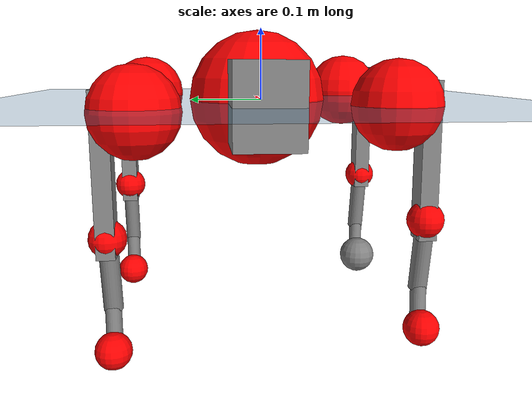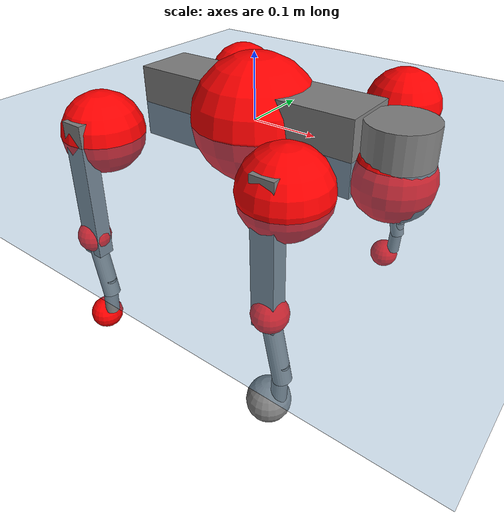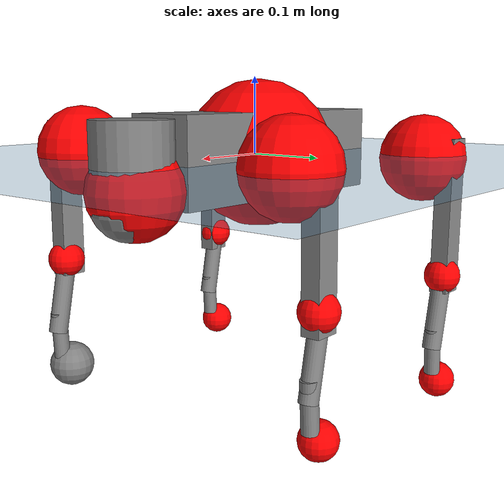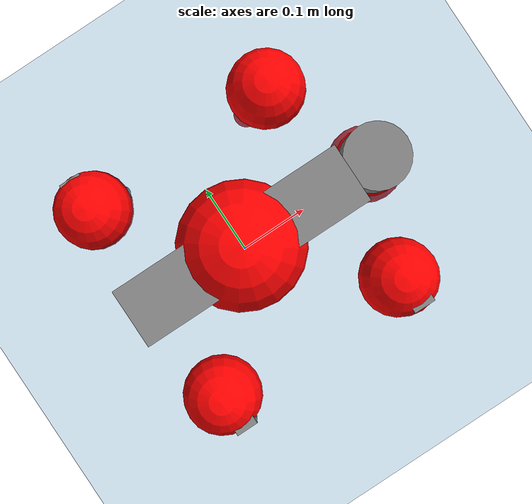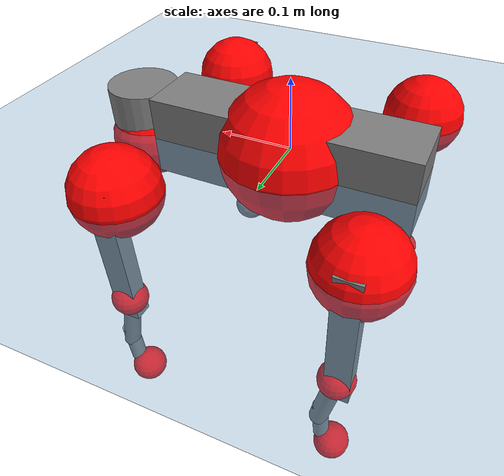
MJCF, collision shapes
<mujoco model="go2">
  <compiler angle="radian" assetdir="assets" balanceinertia="true" inertiafromgeom="false"/>

  <option timestep="0.005" density="1.2" viscosity="2e-05"/>

  <size nkey="1"/>

  <visual>
    <quality shadowsize="8192"/>
    <map shadowclip="0.5"/>
  </visual>

  <default>
    <default class="/">
      <geom contype="0" conaffinity="0" group="1" solref="-1000 -80"/>
      <site size="0.01 0.005 0.005" group="5"/>
      <general forcelimited="true" biastype="affine" gainprm="20" biasprm="0 -20 -0.5"/>
      <default class="go2">
        <joint armature="0.01" damping="0.01" frictionloss="0.2"/>
        <geom condim="1" margin="0.001"/>
        <default class="visual">
          <geom type="mesh" group="2"/>
        </default>
        <default class="collision">
          <geom group="3"/>
          <default class="foot">
            <geom size="0.022 0 0" condim="6" priority="1" friction="0.8 0.02 0.01" solimp="0.015 1 0.022"/>
          </default>
        </default>
        <default class="reward_collision_sphere">
          <geom group="5" rgba="1 0 0 1"/>
        </default>
      </default>
    </default>
  </default>

  <asset>
    <texture type="skybox" colorspace="auto" name="//unnamed_texture_0" builtin="gradient" rgb1="0.95 0.95 0.95" rgb2="0.95 0.95 0.95" width="100" height="600"/>
    <texture type="2d" colorspace="auto" name="texplane" builtin="checker" rgb1="0.345 0.575 0.748" rgb2="0.345 0.575 0.748" markrgb="1 1 1" width="512" height="512"/>
    <material name="MatPlane" class="/" texture="texplane" texuniform="true" texrepeat="2 2" specular="0.9"/>
    <material name="metal" class="/" rgba="0.9 0.95 0.95 1"/>
    <material name="black" class="/" rgba="0 0 0 1"/>
    <material name="white" class="/"/>
    <material name="gray" class="/" rgba="0.671705 0.692426 0.77427 1"/>
    <mesh name="base_0" class="/" file="base_0.obj"/>
    <mesh name="base_1" class="/" file="base_1.obj"/>
    <mesh name="base_2" class="/" file="base_2.obj"/>
    <mesh name="base_3" class="/" file="base_3.obj"/>
    <mesh name="base_4" class="/" file="base_4.obj"/>
    <mesh name="hip_0" class="/" file="hip_0.obj"/>
    <mesh name="hip_1" class="/" file="hip_1.obj"/>
    <mesh name="thigh_0" class="/" file="thigh_0.obj"/>
    <mesh name="thigh_1" class="/" file="thigh_1.obj"/>
    <mesh name="thigh_mirror_0" class="/" file="thigh_mirror_0.obj"/>
    <mesh name="thigh_mirror_1" class="/" file="thigh_mirror_1.obj"/>
    <mesh name="calf_0" class="/" file="calf_0.obj"/>
    <mesh name="calf_1" class="/" file="calf_1.obj"/>
    <mesh name="calf_mirror_0" class="/" file="calf_mirror_0.obj"/>
    <mesh name="calf_mirror_1" class="/" file="calf_mirror_1.obj"/>
    <mesh name="foot" class="/" file="foot.obj"/>
  </asset>

  <worldbody>
    <geom name="floor" class="/" size="100 100 0.125" type="plane" group="0" material="MatPlane"/>
    <light name="toplight_shadow" class="/" pos="0 0 5" dir="0.0990148 0.0990148 -0.990148" type="directional" ambient="0.04 0.04 0.04" diffuse="0.55 0.55 0.55" specular="0.12 0.12 0.12"/>
    <light name="toplight_fill" class="/" pos="0 0 5" dir="0.0990148 0.0990148 -0.990148" type="directional" castshadow="false" ambient="0.04 0.04 0.04" diffuse="0.3 0.3 0.3" specular="0.08 0.08 0.08"/>
    <body name="trunk" childclass="go2" pos="-0.00165617 0.00580523 0.00149227" quat="0.999996 0.00132484 -0.0026164 -4.57226e-06">
      <inertial pos="0.0208121 0.0106994 -0.00995007" quat="-0.00436498 0.721035 -0.0203586 0.692585" mass="6.27025" diaginertia="0.0388415 0.61059 0.0039243"/>
      <joint name="//unnamed_joint_0" type="free" armature="0" damping="0" frictionloss="0"/>
      <geom name="//unnamed_geom_1" class="visual" material="black" mesh="base_0"/>
      <geom name="//unnamed_geom_2" class="visual" material="black" mesh="base_1"/>
      <geom name="//unnamed_geom_3" class="visual" material="black" mesh="base_2"/>
      <geom name="//unnamed_geom_4" class="visual" material="white" mesh="base_3"/>
      <geom name="//unnamed_geom_5" class="visual" material="gray" mesh="base_4"/>
      <geom name="trunk_1" class="collision" size="0.180212 0.0447895 0.0546097" type="box"/>
      <geom name="trunk_2" class="collision" size="0.0479032 0.0431129" pos="0.221489 0 0.00690818" type="cylinder"/>
      <geom name="trunk_3" class="collision" size="0.045029" pos="0.227706 0 -0.0414491"/>
      <geom name="//unnamed_geom_9" class="reward_collision_sphere" size="0.0958064"/>
      <geom name="//unnamed_geom_10" class="reward_collision_sphere" size="0.0574839" pos="0.217603 0 -0.0310868"/>
      <site name="imu" pos="-0.0260488 0.00828287 0.0375506" size="0.00958064"/>
      <camera name="track" pos="0 -2.81244 0" quat="0.707107 0.707107 0 0" mode="trackcom"/>
      <camera name="ego_camera" pos="0.242472 0 0.0310868" quat="-0.5 -0.5 0.5 0.5"/>
      <body name="FL_hip" pos="0.151845 0.0683725 0.00118982" quat="1 0.000191337 0.000873344 0.000317062">
        <inertial pos="-0.00450072 0.0106888 0.00250827" quat="0.488452 0.539751 0.512374 0.455583" mass="0.608268" diaginertia="0.000245183 0.00340937 7.37581e-05"/>
        <joint name="FL_hip_joint" pos="0 0 0" axis="0.999723 0.0120636 -0.0202013" range="-0.965084 1.03962" armature="0.0092758" damping="0.021374" frictionloss="0.178056"/>
        <geom name="//unnamed_geom_11" class="visual" material="metal" mesh="hip_0"/>
        <geom name="//unnamed_geom_12" class="visual" material="gray" mesh="hip_1"/>
        <geom name="//unnamed_geom_13" class="collision" size="0.044071 0.0191613" pos="0 0.112498 0" quat="0.707107 0.707107 0 0" type="cylinder"/>
        <geom name="//unnamed_geom_14" class="reward_collision_sphere" size="0.0574839" pos="0 0.0984355 0"/>
        <body name="FL_thigh" pos="-0.00767711 0.130188 -0.000788054" quat="0.999984 -0.000624231 0.00486643 -0.00264659">
          <inertial pos="-0.00489689 -0.0425369 -0.0230699" quat="0.833683 0.092651 -0.0139555 0.544236" mass="0.97799" diaginertia="0.00190693 0.0283841 0.000141715"/>
          <joint name="FL_thigh_joint" pos="0 0 0" axis="0.00809698 0.999529 0.0296047" range="-1.45067 3.68461" armature="0.00443227" damping="0.0134928" frictionloss="0.234488"/>
          <geom name="//unnamed_geom_15" class="visual" material="metal" mesh="thigh_0"/>
          <geom name="//unnamed_geom_16" class="visual" material="gray" mesh="thigh_1"/>
          <geom name="//unnamed_geom_17" class="collision" size="0.102034 0.0117363 0.0162871" pos="0 0 -0.0735721" quat="0.707107 0 0.707107 0" type="box"/>
          <body name="FL_calf" pos="-0.000327081 8.18684e-05 -0.150197" quat="1 -0.000596521 0.000312205 0.000386258">
            <inertial pos="0.0138013 0.00440932 -0.0900649" quat="0.710159 -0.00895667 -0.005003 0.703967" mass="0.221019" diaginertia="0.000449831 0.00754884 8.78034e-06"/>
            <joint name="FL_calf_joint" pos="0 0 0" axis="0.00415293 0.999873 0.0153942" range="-2.9474 -0.98731" armature="0.0118892" damping="0.0489943" frictionloss="0.175109"/>
            <geom name="//unnamed_geom_18" class="visual" material="gray" mesh="calf_0"/>
            <geom name="//unnamed_geom_19" class="visual" material="black" mesh="calf_1"/>
            <geom name="FL_calf0" class="collision" size="0.0114968 0.0574839" pos="0.00621722 0 -0.0414491" quat="0.994493 0 -0.104807 0" type="cylinder"/>
            <geom name="//unnamed_geom_21" class="collision" size="0.0105387 0.0311371" pos="0.0155431 0 -0.102241" quat="0.999688 0 0.0249974 0" type="cylinder"/>
            <geom name="//unnamed_geom_22" class="visual" pos="0 0 -0.147144" quat="1 0 0 0" material="black" mesh="foot"/>
            <geom name="FL_foot" class="foot" size="0.0237097" pos="-0.00155431 0 -0.147144"/>
            <geom name="//unnamed_geom_24" class="reward_collision_sphere" size="0.0239516"/>
            <geom name="//unnamed_geom_25" class="reward_collision_sphere" size="0.0239516" pos="-0.00155431 0 -0.147144"/>
            <site name="FL_foot" class="foot" pos="-0.00155431 0 -0.147144" size="0.00958064"/>
          </body>
        </body>
      </body>
      <body name="FR_hip" pos="0.161236 -0.0618073 0.00451958" quat="1 -1.77469e-05 3.19634e-05 -2.93758e-05">
        <inertial pos="-0.00488166 -0.0051556 0.0026787" quat="0.526775 0.489026 0.51392 0.468238" mass="0.627083" diaginertia="0.000276165 0.00327494 7.52148e-05"/>
        <joint name="FR_hip_joint" pos="0 0 0" axis="0.999728 0.0140073 0.0186289" stiffness="0.0586664" range="-1.02402 0.879566" armature="0.0109035" damping="0.0261323" frictionloss="0.18064"/>
        <geom name="//unnamed_geom_26" class="visual" pos="0 6.2323e-09 2.67316e-07" quat="4.63268e-05 1 0 0" material="metal" mesh="hip_0"/>
        <geom name="//unnamed_geom_27" class="visual" pos="0 1.01033e-08 -6.61175e-07" quat="4.63268e-05 1 0 0" material="gray" mesh="hip_1"/>
        <geom name="//unnamed_geom_28" class="collision" size="0.044071 0.0191613" pos="0 -0.112498 0" quat="0.707107 0.707107 0 0" type="cylinder"/>
        <geom name="//unnamed_geom_29" class="reward_collision_sphere" size="0.0574839" pos="0 -0.0984355 0"/>
        <body name="FR_thigh" pos="0.00254076 -0.13455 0.00949839" quat="1 2.54324e-05 -0.000106551 -0.000675571">
          <inertial pos="-0.0068015 0.0368495 -0.032258" quat="0.543656 -0.0201167 0.0893611 0.834295" mass="0.993194" diaginertia="0.0018017 0.0318644 0.000137233"/>
          <joint name="FR_thigh_joint" pos="0 0 0" axis="0.00527952 -0.999914 -0.0119941" range="-3.527 1.53059" armature="0.0135037" damping="0" frictionloss="0.241551"/>
          <geom name="//unnamed_geom_30" class="visual" material="metal" mesh="thigh_mirror_0"/>
          <geom name="//unnamed_geom_31" class="visual" material="gray" mesh="thigh_mirror_1"/>
          <geom name="//unnamed_geom_32" class="collision" size="0.102034 0.0117363 0.0162871" pos="0 0 -0.0735721" quat="0.707107 0 0.707107 0" type="box"/>
          <body name="FR_calf" pos="0.00355067 -0.00041106 -0.156058" quat="1 -3.96871e-05 1.96706e-06 7.27133e-05">
            <inertial pos="0.0101525 -0.00478458 -0.0967554" quat="0.712935 -0.00892424 -0.00077424 0.701173" mass="0.183172" diaginertia="0.000375449 0.0063927 7.66052e-06"/>
            <joint name="FR_calf_joint" pos="0 0 0" axis="-0.00607884 -0.999958 0.00680092" stiffness="0.00328592" range="0.802569 2.70269" armature="0.00930792" damping="0.0587345" frictionloss="0.212847"/>
            <geom name="//unnamed_geom_33" class="visual" material="gray" mesh="calf_mirror_0"/>
            <geom name="//unnamed_geom_34" class="visual" material="black" mesh="calf_mirror_1"/>
            <geom name="FR_calf0" class="collision" size="0.0124548 0.0574839" pos="0.00777153 0 -0.0414491" quat="0.995004 0 -0.0998334 0" type="cylinder"/>
            <geom name="//unnamed_geom_36" class="collision" size="0.0105387 0.0311371" pos="0.0155431 0 -0.102241" quat="0.999688 0 0.0249974 0" type="cylinder"/>
            <geom name="//unnamed_geom_37" class="visual" pos="0 0 -0.147144" quat="1 0 0 0" material="black" mesh="foot"/>
            <geom name="FR_foot" class="foot" size="0.0297231" pos="-0.00155431 0 -0.147144"/>
            <geom name="//unnamed_geom_39" class="reward_collision_sphere" size="0.0239516"/>
            <geom name="//unnamed_geom_40" class="reward_collision_sphere" size="0.0239516" pos="-0.00155431 0 -0.147144"/>
            <site name="FR_foot" class="foot" pos="-0.00155431 0 -0.147144" size="0.00958064"/>
          </body>
        </body>
      </body>
      <body name="RL_hip" pos="-0.149675 0.061472 -0.00742251" quat="1 -0.000627481 -0.000555396 -5.35152e-05">
        <inertial pos="0.00412621 0.0030137 -0.00522101" quat="0.50571 0.499656 0.495139 0.499439" mass="0.702124" diaginertia="0.000258363 0.00353875 7.34017e-05"/>
        <joint name="RL_hip_joint" pos="0 0 0" axis="-0.99992 -0.0112782 0.00569514" range="-1.213 1.08805" armature="0.00970315" damping="0.00290225" frictionloss="0.123421"/>
        <geom name="//unnamed_geom_41" class="visual" pos="-7.52113e-10 0 -1.47432e-07" quat="4.63268e-05 0 1 0" material="metal" mesh="hip_0"/>
        <geom name="//unnamed_geom_42" class="visual" pos="-1.21927e-09 0 -1.30751e-07" quat="4.63268e-05 0 1 0" material="gray" mesh="hip_1"/>
        <geom name="//unnamed_geom_43" class="collision" size="0.044071 0.0191613" pos="0 0.112498 0" quat="0.707107 0.707107 0 0" type="cylinder"/>
        <geom name="//unnamed_geom_44" class="reward_collision_sphere" size="0.0574839" pos="0 0.0984355 0"/>
        <body name="RL_thigh" pos="-0.000986457 0.137752 -0.00120671" quat="0.999988 -0.00431115 0.00148114 -0.00173757">
          <inertial pos="-0.00195016 -0.0432631 -0.0245938" quat="0.83095 0.113771 -0.0381334 0.543254" mass="1.15085" diaginertia="0.00178395 0.0303662 0.00012326"/>
          <joint name="RL_thigh_joint" pos="0 0 0" axis="-0.0497927 0.998434 -0.025484" range="-0.545476 4.50112" armature="0.00682654" damping="0" frictionloss="0.234822"/>
          <geom name="//unnamed_geom_45" class="visual" material="metal" mesh="thigh_0"/>
          <geom name="//unnamed_geom_46" class="visual" material="gray" mesh="thigh_1"/>
          <geom name="//unnamed_geom_47" class="collision" size="0.102034 0.0117363 0.0162871" pos="0 0 -0.0735721" quat="0.707107 0 0.707107 0" type="box"/>
          <body name="RL_calf" pos="0.00354377 -0.000597726 -0.153681" quat="0.999998 -0.00171029 3.44343e-05 0.00120803">
            <inertial pos="0.00683403 -0.0088247 -0.0990233" quat="0.705757 0.0052747 -0.00358173 0.708426" mass="0.217219" diaginertia="0.000458771 0.00876431 9.16775e-06"/>
            <joint name="RL_calf_joint" pos="0 0 0" axis="0.00403425 0.999992 0.00032355" range="-2.93838 -0.805771" armature="0.00424493" damping="0" frictionloss="0.244081"/>
            <geom name="//unnamed_geom_48" class="visual" material="gray" mesh="calf_0"/>
            <geom name="//unnamed_geom_49" class="visual" material="black" mesh="calf_1"/>
            <geom name="RL_calf0" class="collision" size="0.0124548 0.0574839" pos="0.00777153 0 -0.0414491" quat="0.995004 0 -0.0998334 0" type="cylinder"/>
            <geom name="//unnamed_geom_51" class="collision" size="0.0105387 0.0311371" pos="0.0155431 0 -0.102241" quat="0.999688 0 0.0249974 0" type="cylinder"/>
            <geom name="//unnamed_geom_52" class="visual" pos="0 0 -0.147144" quat="1 0 0 0" material="black" mesh="foot"/>
            <geom name="RL_foot" class="foot" size="0.0234695" pos="-0.00155431 0 -0.147144"/>
            <geom name="//unnamed_geom_54" class="reward_collision_sphere" size="0.0239516"/>
            <geom name="//unnamed_geom_55" class="reward_collision_sphere" size="0.0239516" pos="-0.00155431 0 -0.147144"/>
            <site name="RL_foot" class="foot" pos="-0.00155431 0 -0.147144" size="0.00958064"/>
          </body>
        </body>
      </body>
      <body name="RR_hip" pos="-0.139628 -0.0640702 -0.00077566" quat="0.999983 -0.00213588 0.00540637 -0.000715716">
        <inertial pos="0.00575003 -0.00126003 -0.000938814" quat="0.494382 0.497701 0.496741 0.511007" mass="0.625523" diaginertia="0.000260763 0.0033706 6.7409e-05"/>
        <joint name="RR_hip_joint" pos="0 0 0" axis="-0.99998 -0.00190837 -0.00604635" range="-1.04634 0.928247" armature="0.00508729" damping="0.00898037" frictionloss="0.142531"/>
        <geom name="//unnamed_geom_56" class="visual" pos="7.73892e-10 6.2323e-09 -4.14748e-07" quat="2.14617e-09 4.63268e-05 4.63268e-05 -1" material="metal" mesh="hip_0"/>
        <geom name="//unnamed_geom_57" class="visual" pos="1.1654e-09 1.01033e-08 5.30425e-07" quat="2.14617e-09 4.63268e-05 4.63268e-05 -1" material="gray" mesh="hip_1"/>
        <geom name="//unnamed_geom_58" class="collision" size="0.044071 0.0191613" pos="0 -0.112498 0" quat="0.707107 0.707107 0 0" type="cylinder"/>
        <geom name="//unnamed_geom_59" class="reward_collision_sphere" size="0.0574839" pos="0 -0.0984355 0"/>
        <body name="RR_thigh" pos="0.00601311 -0.141656 0.00189254" quat="0.999999 -0.00104122 -0.000497311 0.000703331">
          <inertial pos="-0.00254243 0.0382616 -0.0238424" quat="0.551843 -0.022861 0.0857312 0.829215" mass="0.99029" diaginertia="0.00165371 0.0324464 0.000147209"/>
          <joint name="RR_thigh_joint" pos="0 0 0" axis="-0.00286136 -0.999969 -0.00739602" range="-4.50431 0.296914" armature="0.0146421" damping="0" frictionloss="0.176889"/>
          <geom name="//unnamed_geom_60" class="visual" material="metal" mesh="thigh_mirror_0"/>
          <geom name="//unnamed_geom_61" class="visual" material="gray" mesh="thigh_mirror_1"/>
          <geom name="//unnamed_geom_62" class="collision" size="0.102034 0.0117363 0.0162871" pos="0 0 -0.0735721" quat="0.707107 0 0.707107 0" type="box"/>
          <body name="RR_calf" pos="-0.00494047 0.000158187 -0.15007" quat="1 0.000201821 0.000594895 -0.000309253">
            <inertial pos="0.00951545 0.0017505 -0.0974565" quat="0.703609 -0.00437046 0.00161195 0.710572" mass="0.197305" diaginertia="0.000417048 0.00769421 8.24408e-06"/>
            <joint name="RR_calf_joint" pos="0 0 0" axis="0.0185051 -0.999344 0.0311156" range="0.659982 2.6499" armature="0.00958278" damping="0.0024891" frictionloss="0.149543"/>
            <geom name="//unnamed_geom_63" class="visual" material="gray" mesh="calf_mirror_0"/>
            <geom name="//unnamed_geom_64" class="visual" material="black" mesh="calf_mirror_1"/>
            <geom name="RR_calf0" class="collision" size="0.0124548 0.0574839" pos="0.00777153 0 -0.0414491" quat="0.995004 0 -0.0998334 0" type="cylinder"/>
            <geom name="//unnamed_geom_66" class="collision" size="0.0105387 0.0311371" pos="0.0155431 0 -0.102241" quat="0.999688 0 0.0249974 0" type="cylinder"/>
            <geom name="//unnamed_geom_67" class="visual" pos="0 0 -0.147144" quat="1 0 0 0" material="black" mesh="foot"/>
            <geom name="RR_foot" class="foot" size="0.0118948" pos="-0.00155431 0 -0.147144"/>
            <geom name="//unnamed_geom_69" class="reward_collision_sphere" size="0.0239516"/>
            <geom name="//unnamed_geom_70" class="reward_collision_sphere" size="0.0239516" pos="-0.00155431 0 -0.147144"/>
            <site name="RR_foot" class="foot" pos="-0.00155431 0 -0.147144" size="0.00958064"/>
          </body>
        </body>
      </body>
    </body>
  </worldbody>

  <contact>
    <pair class="/" geom1="floor" geom2="FL_foot" name="//unnamed_contact_0"/>
    <pair class="/" geom1="floor" geom2="FR_foot" name="//unnamed_contact_1"/>
    <pair class="/" geom1="floor" geom2="RL_foot" name="//unnamed_contact_2"/>
    <pair class="/" geom1="floor" geom2="RR_foot" name="//unnamed_contact_3"/>
  </contact>

  <actuator>
    <general name="FL_hip" class="/" joint="FL_hip_joint" forcerange="-19.7802 19.7802" gainprm="19.3067" biasprm="0 -19.3067 -0.497443"/>
    <general name="FL_thigh" class="/" joint="FL_thigh_joint" forcerange="-21.8807 21.8807" gainprm="19.3067" biasprm="0 -19.3067 -0.497443"/>
    <general name="FL_calf" class="/" joint="FL_calf_joint" forcerange="-46.2814 46.2814" gainprm="19.3067" biasprm="0 -19.3067 -0.497443"/>
    <general name="FR_hip" class="/" joint="FR_hip_joint" forcerange="-26.043 26.043" gainprm="19.3067" biasprm="0 -19.3067 -0.497443"/>
    <general name="FR_thigh" class="/" joint="FR_thigh_joint" forcerange="-21.1698 21.1698" gainprm="19.3067" biasprm="0 -19.3067 -0.497443"/>
    <general name="FR_calf" class="/" joint="FR_calf_joint" forcerange="-54.3402 54.3402" gainprm="19.3067" biasprm="0 -19.3067 -0.497443"/>
    <general name="RL_hip" class="/" joint="RL_hip_joint" forcerange="-24.1989 24.1989" gainprm="19.3067" biasprm="0 -19.3067 -0.497443"/>
    <general name="RL_thigh" class="/" joint="RL_thigh_joint" forcerange="-21.3607 21.3607" gainprm="19.3067" biasprm="0 -19.3067 -0.497443"/>
    <general name="RL_calf" class="/" joint="RL_calf_joint" forcerange="-42.004 42.004" gainprm="19.3067" biasprm="0 -19.3067 -0.497443"/>
    <general name="RR_hip" class="/" joint="RR_hip_joint" forcerange="-25.7997 25.7997" gainprm="19.3067" biasprm="0 -19.3067 -0.497443"/>
    <general name="RR_thigh" class="/" joint="RR_thigh_joint" forcerange="-20.7294 20.7294" gainprm="19.3067" biasprm="0 -19.3067 -0.497443"/>
    <general name="RR_calf" class="/" joint="RR_calf_joint" forcerange="-28.4997 28.4997" gainprm="19.3067" biasprm="0 -19.3067 -0.497443"/>
  </actuator>

  <sensor>
    <gyro site="imu" name="imu_angular_velocity"/>
    <velocimeter site="imu" name="imu_linear_velocity"/>
    <framelinvel objtype="site" objname="FL_foot" name="FL_foot_global_linear_velocity"/>
    <framelinvel objtype="site" objname="FR_foot" name="FR_foot_global_linear_velocity"/>
    <framelinvel objtype="site" objname="RL_foot" name="RL_foot_global_linear_velocity"/>
    <framelinvel objtype="site" objname="RR_foot" name="RR_foot_global_linear_velocity"/>
  </sensor>

  <keyframe>
    <key name="home" qpos="0 0 0.325 1 0 0 0 0.1 0.8 -1.5 -0.1 -0.8 1.5 -0.1 0.8 -1.5 0.1 -0.8 1.5"/>
  </keyframe>
</mujoco>
